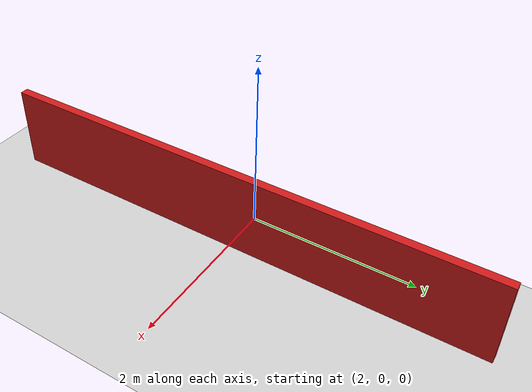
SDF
<?xml version="1.0" ?>

<sdf version="1.9">

  <world name="test_world">

    <!-- Plugins Gazebo                                -->

    <plugin
        filename="gz-sim-physics-system"
        name="gz::sim::systems::Physics">
    </plugin>

    <plugin
        filename="gz-sim-user-commands-system"
        name="gz::sim::systems::UserCommands">
    </plugin>

    <plugin
        filename="gz-sim-scene-broadcaster-system"
        name="gz::sim::systems::SceneBroadcaster">
    </plugin>

    <plugin
        filename="gz-sim-sensors-system"
        name="gz::sim::systems::Sensors">
        <render_engine>ogre2</render_engine>
    </plugin>

    <!-- Physique                                       -->
    <physics name="default_physics" type="ode">
      <max_step_size>0.001</max_step_size>
      <real_time_factor>1.0</real_time_factor>
    </physics>

    <!-- Soleil                                         -->

    <light name="sun" type="directional">

      <pose>0 0 10 0 0 0</pose>

      <cast_shadows>true</cast_shadows>

      <diffuse>0.8 0.8 0.8 1</diffuse>

      <specular>0.2 0.2 0.2 1</specular>

      <direction>-0.5 0.1 -0.9</direction>

    </light>

    <!-- Sol                                             -->

    <model name="ground">

      <static>true</static>

      <link name="ground_link">

        <collision name="collision">

          <geometry>

            <plane>
              <normal>0 0 1</normal>
              <size>20 20</size>
            </plane>

          </geometry>

        </collision>

        <visual name="visual">

          <geometry>

            <plane>
              <normal>0 0 1</normal>
              <size>20 20</size>
            </plane>

          </geometry>

        </visual>
      </link>
    </model>

    <!-- Mur                                             -->

    <model name="wall">

      <static>true</static>

      <!--
        Le mur est à 1.5 m devant le robot.
        X = 1.5
        Y = 0
        Z = 0.5
      -->

      <pose>2.5 0 0.5 0 0 0</pose>

      <link name="wall_link">
        <collision name="collision">
          <geometry>

            <box>
              <size>0.10 6.0 1.0</size>
            </box>

          </geometry>
        </collision>

        <visual name="visual">

          <geometry>

            <box>
              <size>0.10 6.0 1.0</size>
            </box>

          </geometry>

          <material>
              <ambient>0.8 0.1 0.1 1</ambient>
              <diffuse>0.8 0.1 0.1 1</diffuse>
          </material>

        </visual>
      </link>
    </model>
  </world>
</sdf>
